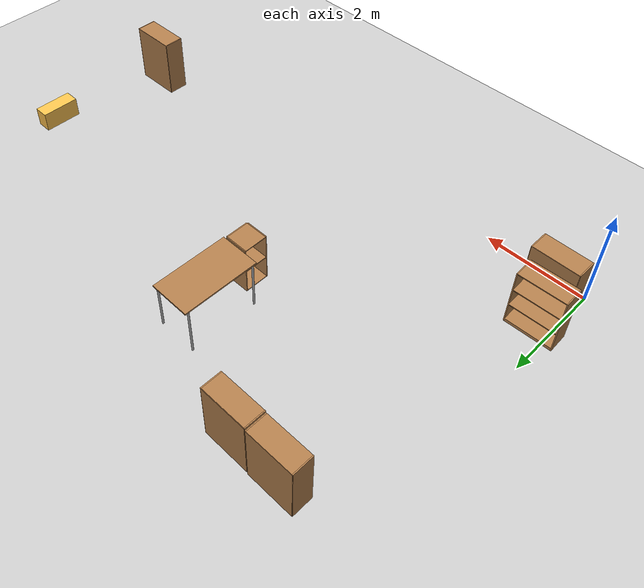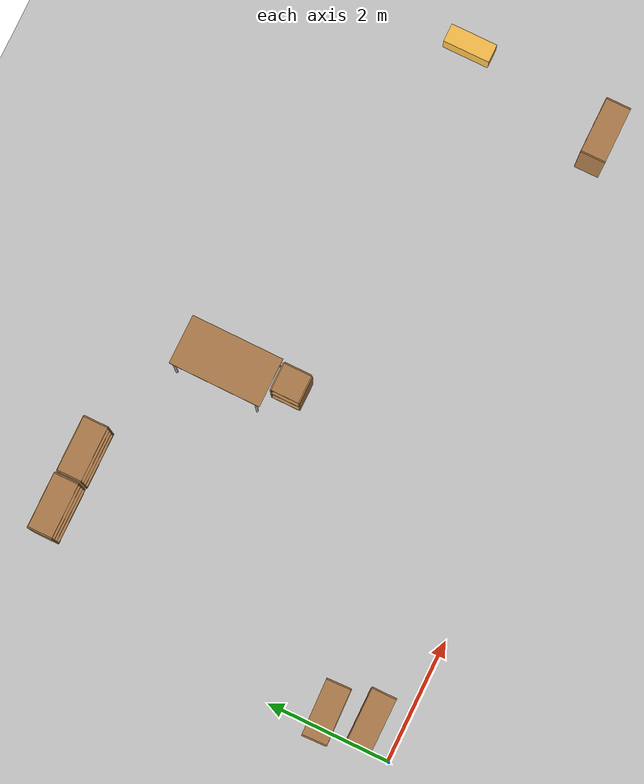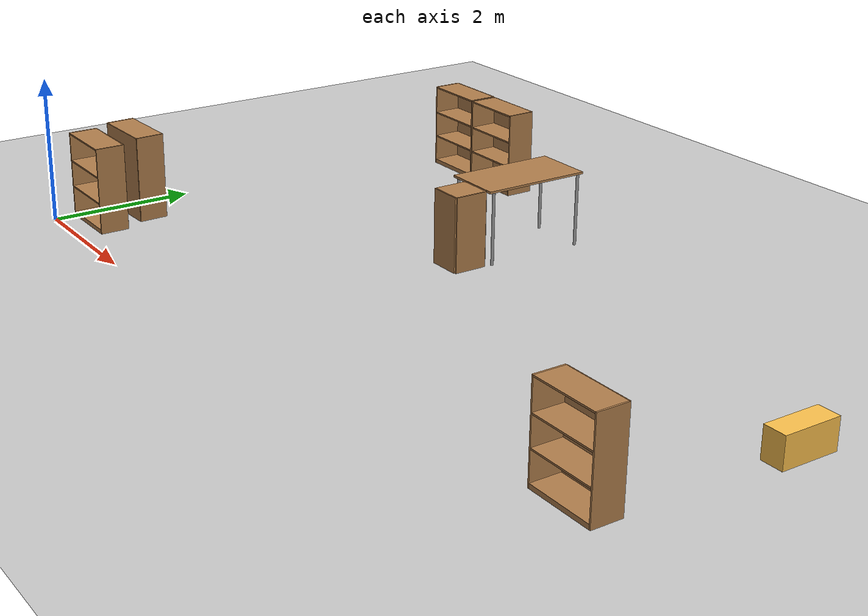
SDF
<sdf version="1.6">
 <world name="default">
  <model name="ground_plane">
   <static>1</static>
   <link name="link">
    <collision name="collision">
     <geometry><plane><normal>0 0 1</normal><size>100 100</size></plane></geometry>
     <surface><friction><ode><mu>100</mu><mu2>50</mu2></ode></friction></surface>
    </collision>
    <visual name="visual">
     <cast_shadows>0</cast_shadows>
     <geometry><plane><normal>0 0 1</normal><size>100 100</size></plane></geometry>
     <material>
      <script><uri>file://media/materials/scripts/gazebo.material</uri><name>Gazebo/Grey</name></script>
     </material>
    </visual>
   </link>
  </model>
  <model name="bookshelf">
   <static>1</static>
   <link name="link">
    <inertial><mass>1</mass></inertial>
    <collision name="back">
     <pose>0 0.005 0.6 0 -0 0</pose>
     <geometry><box><size>0.9 0.01 1.2</size></box></geometry>
    </collision>
    <visual name="visual1">
     <pose>0 0.005 0.6 0 -0 0</pose>
     <geometry><box><size>0.9 0.01 1.2</size></box></geometry>
     <material>
      <script><uri>file://media/materials/scripts/gazebo.material</uri><name>Gazebo/Wood</name></script>
     </material>
    </visual>
    <collision name="left_side">
     <pose>0.45 -0.195 0.6 0 -0 0</pose>
     <geometry><box><size>0.02 0.4 1.2</size></box></geometry>
    </collision>
    <visual name="visual2">
     <pose>0.45 -0.195 0.6 0 -0 0</pose>
     <geometry><box><size>0.02 0.4 1.2</size></box></geometry>
     <material>
      <script><uri>file://media/materials/scripts/gazebo.material</uri><name>Gazebo/Wood</name></script>
     </material>
    </visual>
    <collision name="right_side">
     <pose>-0.45 -0.195 0.6 0 -0 0</pose>
     <geometry><box><size>0.02 0.4 1.2</size></box></geometry>
    </collision>
    <visual name="visual3">
     <pose>-0.45 -0.195 0.6 0 -0 0</pose>
     <geometry><box><size>0.02 0.4 1.2</size></box></geometry>
     <material>
      <script><uri>file://media/materials/scripts/gazebo.material</uri><name>Gazebo/Wood</name></script>
     </material>
    </visual>
    <collision name="bottom">
     <pose>0 -0.195 0.03 0 -0 0</pose>
     <geometry><box><size>0.88 0.4 0.06</size></box></geometry>
    </collision>
    <visual name="visual4">
     <pose>0 -0.195 0.03 0 -0 0</pose>
     <geometry><box><size>0.88 0.4 0.06</size></box></geometry>
     <material>
      <script><uri>file://media/materials/scripts/gazebo.material</uri><name>Gazebo/Wood</name></script>
     </material>
    </visual>
    <collision name="top">
     <pose>0 -0.195 1.19 0 -0 0</pose>
     <geometry><box><size>0.88 0.4 0.02</size></box></geometry>
    </collision>
    <visual name="visual5">
     <pose>0 -0.195 1.19 0 -0 0</pose>
     <geometry><box><size>0.88 0.4 0.02</size></box></geometry>
     <material>
      <script><uri>file://media/materials/scripts/gazebo.material</uri><name>Gazebo/Wood</name></script>
     </material>
    </visual>
    <collision name="low_shelf">
     <pose>0 -0.195 0.43 0 -0 0</pose>
     <geometry><box><size>0.88 0.4 0.02</size></box></geometry>
    </collision>
    <visual name="visual6">
     <pose>0 -0.195 0.43 0 -0 0</pose>
     <geometry><box><size>0.88 0.4 0.02</size></box></geometry>
     <material>
      <script><uri>file://media/materials/scripts/gazebo.material</uri><name>Gazebo/Wood</name></script>
     </material>
    </visual>
    <collision name="high_shelf">
     <pose>0 -0.195 0.8 0 -0 0</pose>
     <geometry><box><size>0.88 0.4 0.02</size></box></geometry>
    </collision>
    <visual name="visual7">
     <pose>0 -0.195 0.8 0 -0 0</pose>
     <geometry><box><size>0.88 0.4 0.02</size></box></geometry>
     <material>
      <script><uri>file://media/materials/scripts/gazebo.material</uri><name>Gazebo/Wood</name></script>
     </material>
    </visual>
   </link>
   <pose>1.2383 6.28205 0 0 -0 0</pose>
  </model>
  <model name="bookshelf_0">
   <static>1</static>
   <link name="link">
    <inertial><mass>1</mass></inertial>
    <collision name="back">
     <pose>0 0.005 0.6 0 -0 0</pose>
     <geometry><box><size>0.9 0.01 1.2</size></box></geometry>
    </collision>
    <visual name="visual1">
     <pose>0 0.005 0.6 0 -0 0</pose>
     <geometry><box><size>0.9 0.01 1.2</size></box></geometry>
     <material>
      <script><uri>file://media/materials/scripts/gazebo.material</uri><name>Gazebo/Wood</name></script>
     </material>
    </visual>
    <collision name="left_side">
     <pose>0.45 -0.195 0.6 0 -0 0</pose>
     <geometry><box><size>0.02 0.4 1.2</size></box></geometry>
    </collision>
    <visual name="visual2">
     <pose>0.45 -0.195 0.6 0 -0 0</pose>
     <geometry><box><size>0.02 0.4 1.2</size></box></geometry>
     <material>
      <script><uri>file://media/materials/scripts/gazebo.material</uri><name>Gazebo/Wood</name></script>
     </material>
    </visual>
    <collision name="right_side">
     <pose>-0.45 -0.195 0.6 0 -0 0</pose>
     <geometry><box><size>0.02 0.4 1.2</size></box></geometry>
    </collision>
    <visual name="visual3">
     <pose>-0.45 -0.195 0.6 0 -0 0</pose>
     <geometry><box><size>0.02 0.4 1.2</size></box></geometry>
     <material>
      <script><uri>file://media/materials/scripts/gazebo.material</uri><name>Gazebo/Wood</name></script>
     </material>
    </visual>
    <collision name="bottom">
     <pose>0 -0.195 0.03 0 -0 0</pose>
     <geometry><box><size>0.88 0.4 0.06</size></box></geometry>
    </collision>
    <visual name="visual4">
     <pose>0 -0.195 0.03 0 -0 0</pose>
     <geometry><box><size>0.88 0.4 0.06</size></box></geometry>
     <material>
      <script><uri>file://media/materials/scripts/gazebo.material</uri><name>Gazebo/Wood</name></script>
     </material>
    </visual>
    <collision name="top">
     <pose>0 -0.195 1.19 0 -0 0</pose>
     <geometry><box><size>0.88 0.4 0.02</size></box></geometry>
    </collision>
    <visual name="visual5">
     <pose>0 -0.195 1.19 0 -0 0</pose>
     <geometry><box><size>0.88 0.4 0.02</size></box></geometry>
     <material>
      <script><uri>file://media/materials/scripts/gazebo.material</uri><name>Gazebo/Wood</name></script>
     </material>
    </visual>
    <collision name="low_shelf">
     <pose>0 -0.195 0.43 0 -0 0</pose>
     <geometry><box><size>0.88 0.4 0.02</size></box></geometry>
    </collision>
    <visual name="visual6">
     <pose>0 -0.195 0.43 0 -0 0</pose>
     <geometry><box><size>0.88 0.4 0.02</size></box></geometry>
     <material>
      <script><uri>file://media/materials/scripts/gazebo.material</uri><name>Gazebo/Wood</name></script>
     </material>
    </visual>
    <collision name="high_shelf">
     <pose>0 -0.195 0.8 0 -0 0</pose>
     <geometry><box><size>0.88 0.4 0.02</size></box></geometry>
    </collision>
    <visual name="visual7">
     <pose>0 -0.195 0.8 0 -0 0</pose>
     <geometry><box><size>0.88 0.4 0.02</size></box></geometry>
     <material>
      <script><uri>file://media/materials/scripts/gazebo.material</uri><name>Gazebo/Wood</name></script>
     </material>
    </visual>
   </link>
   <pose>2.17717 6.2674 0 0 -0 0</pose>
  </model>
  <model name="table_clone">
   <static>1</static>
   <link name="link">
    <collision name="surface">
     <pose>0 0 1 0 -0 0</pose>
     <geometry><box><size>1.5 0.8 0.03</size></box></geometry>
     <surface><friction><ode><mu>0.6</mu><mu2>0.6</mu2></ode></friction></surface>
    </collision>
    <visual name="visual1">
     <pose>0 0 1 0 -0 0</pose>
     <geometry><box><size>1.5 0.8 0.03</size></box></geometry>
     <material>
      <script><uri>file://media/materials/scripts/gazebo.material</uri><name>Gazebo/Wood</name></script>
     </material>
    </visual>
    <collision name="front_left_leg">
     <pose>0.68 0.38 0.5 0 -0 0</pose>
     <geometry><cylinder><radius>0.02</radius><length>1</length></cylinder></geometry>
    </collision>
    <visual name="front_left_leg">
     <pose>0.68 0.38 0.5 0 -0 0</pose>
     <geometry><cylinder><radius>0.02</radius><length>1</length></cylinder></geometry>
     <material>
      <script><uri>file://media/materials/scripts/gazebo.material</uri><name>Gazebo/Grey</name></script>
     </material>
    </visual>
    <collision name="front_right_leg">
     <pose>0.68 -0.38 0.5 0 -0 0</pose>
     <geometry><cylinder><radius>0.02</radius><length>1</length></cylinder></geometry>
    </collision>
    <visual name="front_right_leg">
     <pose>0.68 -0.38 0.5 0 -0 0</pose>
     <geometry><cylinder><radius>0.02</radius><length>1</length></cylinder></geometry>
     <material>
      <script><uri>file://media/materials/scripts/gazebo.material</uri><name>Gazebo/Grey</name></script>
     </material>
    </visual>
    <collision name="back_right_leg">
     <pose>-0.68 -0.38 0.5 0 -0 0</pose>
     <geometry><cylinder><radius>0.02</radius><length>1</length></cylinder></geometry>
    </collision>
    <visual name="back_right_leg">
     <pose>-0.68 -0.38 0.5 0 -0 0</pose>
     <geometry><cylinder><radius>0.02</radius><length>1</length></cylinder></geometry>
     <material>
      <script><uri>file://media/materials/scripts/gazebo.material</uri><name>Gazebo/Grey</name></script>
     </material>
    </visual>
    <collision name="back_left_leg">
     <pose>-0.68 0.38 0.5 0 -0 0</pose>
     <geometry><cylinder><radius>0.02</radius><length>1</length></cylinder></geometry>
    </collision>
    <visual name="back_left_leg">
     <pose>-0.68 0.38 0.5 0 -0 0</pose>
     <geometry><cylinder><radius>0.02</radius><length>1</length></cylinder></geometry>
     <material>
      <script><uri>file://media/materials/scripts/gazebo.material</uri><name>Gazebo/Grey</name></script>
     </material>
    </visual>
   </link>
   <pose>4.28955 4.75152 0 0 0 -1.57662</pose>
  </model>
  <model name="bookshelf_clone_0">
   <static>1</static>
   <link name="link">
    <inertial><mass>1</mass></inertial>
    <collision name="back">
     <pose>0 0.005 0.6 0 -0 0</pose>
     <geometry><box><size>0.9 0.01 1.2</size></box></geometry>
    </collision>
    <visual name="visual1">
     <pose>0 0.005 0.6 0 -0 0</pose>
     <geometry><box><size>0.9 0.01 1.2</size></box></geometry>
     <material>
      <script><uri>file://media/materials/scripts/gazebo.material</uri><name>Gazebo/Wood</name></script>
     </material>
    </visual>
    <collision name="left_side">
     <pose>0.45 -0.195 0.6 0 -0 0</pose>
     <geometry><box><size>0.02 0.4 1.2</size></box></geometry>
    </collision>
    <visual name="visual2">
     <pose>0.45 -0.195 0.6 0 -0 0</pose>
     <geometry><box><size>0.02 0.4 1.2</size></box></geometry>
     <material>
      <script><uri>file://media/materials/scripts/gazebo.material</uri><name>Gazebo/Wood</name></script>
     </material>
    </visual>
    <collision name="right_side">
     <pose>-0.45 -0.195 0.6 0 -0 0</pose>
     <geometry><box><size>0.02 0.4 1.2</size></box></geometry>
    </collision>
    <visual name="visual3">
     <pose>-0.45 -0.195 0.6 0 -0 0</pose>
     <geometry><box><size>0.02 0.4 1.2</size></box></geometry>
     <material>
      <script><uri>file://media/materials/scripts/gazebo.material</uri><name>Gazebo/Wood</name></script>
     </material>
    </visual>
    <collision name="bottom">
     <pose>0 -0.195 0.03 0 -0 0</pose>
     <geometry><box><size>0.88 0.4 0.06</size></box></geometry>
    </collision>
    <visual name="visual4">
     <pose>0 -0.195 0.03 0 -0 0</pose>
     <geometry><box><size>0.88 0.4 0.06</size></box></geometry>
     <material>
      <script><uri>file://media/materials/scripts/gazebo.material</uri><name>Gazebo/Wood</name></script>
     </material>
    </visual>
    <collision name="top">
     <pose>0 -0.195 1.19 0 -0 0</pose>
     <geometry><box><size>0.88 0.4 0.02</size></box></geometry>
    </collision>
    <visual name="visual5">
     <pose>0 -0.195 1.19 0 -0 0</pose>
     <geometry><box><size>0.88 0.4 0.02</size></box></geometry>
     <material>
      <script><uri>file://media/materials/scripts/gazebo.material</uri><name>Gazebo/Wood</name></script>
     </material>
    </visual>
    <collision name="low_shelf">
     <pose>0 -0.195 0.43 0 -0 0</pose>
     <geometry><box><size>0.88 0.4 0.02</size></box></geometry>
    </collision>
    <visual name="visual6">
     <pose>0 -0.195 0.43 0 -0 0</pose>
     <geometry><box><size>0.88 0.4 0.02</size></box></geometry>
     <material>
      <script><uri>file://media/materials/scripts/gazebo.material</uri><name>Gazebo/Wood</name></script>
     </material>
    </visual>
    <collision name="high_shelf">
     <pose>0 -0.195 0.8 0 -0 0</pose>
     <geometry><box><size>0.88 0.4 0.02</size></box></geometry>
    </collision>
    <visual name="visual7">
     <pose>0 -0.195 0.8 0 -0 0</pose>
     <geometry><box><size>0.88 0.4 0.02</size></box></geometry>
     <material>
      <script><uri>file://media/materials/scripts/gazebo.material</uri><name>Gazebo/Wood</name></script>
     </material>
    </visual>
   </link>
   <pose>0.430752 0.696829 0 0 -0 0</pose>
  </model>
  <model name="bookshelf_1">
   <static>1</static>
   <link name="link">
    <inertial><mass>1</mass></inertial>
    <collision name="back">
     <pose>0 0.005 0.6 0 -0 0</pose>
     <geometry><box><size>0.9 0.01 1.2</size></box></geometry>
    </collision>
    <visual name="visual1">
     <pose>0 0.005 0.6 0 -0 0</pose>
     <geometry><box><size>0.9 0.01 1.2</size></box></geometry>
     <material>
      <script><uri>file://media/materials/scripts/gazebo.material</uri><name>Gazebo/Wood</name></script>
     </material>
    </visual>
    <collision name="left_side">
     <pose>0.45 -0.195 0.6 0 -0 0</pose>
     <geometry><box><size>0.02 0.4 1.2</size></box></geometry>
    </collision>
    <visual name="visual2">
     <pose>0.45 -0.195 0.6 0 -0 0</pose>
     <geometry><box><size>0.02 0.4 1.2</size></box></geometry>
     <material>
      <script><uri>file://media/materials/scripts/gazebo.material</uri><name>Gazebo/Wood</name></script>
     </material>
    </visual>
    <collision name="right_side">
     <pose>-0.45 -0.195 0.6 0 -0 0</pose>
     <geometry><box><size>0.02 0.4 1.2</size></box></geometry>
    </collision>
    <visual name="visual3">
     <pose>-0.45 -0.195 0.6 0 -0 0</pose>
     <geometry><box><size>0.02 0.4 1.2</size></box></geometry>
     <material>
      <script><uri>file://media/materials/scripts/gazebo.material</uri><name>Gazebo/Wood</name></script>
     </material>
    </visual>
    <collision name="bottom">
     <pose>0 -0.195 0.03 0 -0 0</pose>
     <geometry><box><size>0.88 0.4 0.06</size></box></geometry>
    </collision>
    <visual name="visual4">
     <pose>0 -0.195 0.03 0 -0 0</pose>
     <geometry><box><size>0.88 0.4 0.06</size></box></geometry>
     <material>
      <script><uri>file://media/materials/scripts/gazebo.material</uri><name>Gazebo/Wood</name></script>
     </material>
    </visual>
    <collision name="top">
     <pose>0 -0.195 1.19 0 -0 0</pose>
     <geometry><box><size>0.88 0.4 0.02</size></box></geometry>
    </collision>
    <visual name="visual5">
     <pose>0 -0.195 1.19 0 -0 0</pose>
     <geometry><box><size>0.88 0.4 0.02</size></box></geometry>
     <material>
      <script><uri>file://media/materials/scripts/gazebo.material</uri><name>Gazebo/Wood</name></script>
     </material>
    </visual>
    <collision name="low_shelf">
     <pose>0 -0.195 0.43 0 -0 0</pose>
     <geometry><box><size>0.88 0.4 0.02</size></box></geometry>
    </collision>
    <visual name="visual6">
     <pose>0 -0.195 0.43 0 -0 0</pose>
     <geometry><box><size>0.88 0.4 0.02</size></box></geometry>
     <material>
      <script><uri>file://media/materials/scripts/gazebo.material</uri><name>Gazebo/Wood</name></script>
     </material>
    </visual>
    <collision name="high_shelf">
     <pose>0 -0.195 0.8 0 -0 0</pose>
     <geometry><box><size>0.88 0.4 0.02</size></box></geometry>
    </collision>
    <visual name="visual7">
     <pose>0 -0.195 0.8 0 -0 0</pose>
     <geometry><box><size>0.88 0.4 0.02</size></box></geometry>
     <material>
      <script><uri>file://media/materials/scripts/gazebo.material</uri><name>Gazebo/Wood</name></script>
     </material>
    </visual>
   </link>
   <pose>0.271418 0.950457 0 0 0 -3.11062</pose>
  </model>
  <model name="cabinet">
   <static>1</static>
   <link name="cabinet_bottom_plate">
    <inertial>
     <pose>0 0 -1 0 -0 0</pose>
     <inertia><ixx>2.05</ixx><ixy>0</ixy><ixz>0</ixz><iyy>2.05</iyy><iyz>0</iyz><izz>2.05</izz></inertia>
     <mass>25</mass>
    </inertial>
    <collision name="cabinet_bottom_plate_geom">
     <pose>0 0 0.01 0 -0 0</pose>
     <geometry><box><size>0.45 0.45 0.02</size></box></geometry>
    </collision>
    <visual name="cabinet_bottom_plate_geom_visual">
     <pose>0 0 0.01 0 -0 0</pose>
     <geometry><box><size>0.45 0.45 0.02</size></box></geometry>
     <material>
      <script><uri>file://media/materials/scripts/gazebo.material</uri><name>Gazebo/Wood</name></script>
     </material>
    </visual>
    <collision name="cabinet_bottom_plate_geom_cabinet_back_plate">
     <pose>0.235 0 0.51 0 -0 0</pose>
     <geometry><box><size>0.02 0.45 1.02</size></box></geometry>
    </collision>
    <visual name="cabinet_bottom_plate_geom_cabinet_back_plate_visual">
     <pose>0.235 0 0.51 0 -0 0</pose>
     <geometry><box><size>0.02 0.45 1.02</size></box></geometry>
     <material>
      <script><uri>file://media/materials/scripts/gazebo.material</uri><name>Gazebo/Wood</name></script>
     </material>
    </visual>
    <collision name="cabinet_bottom_plate_geom_cabinet_left_plate">
     <pose>0 0.235 0.51 0 -0 0</pose>
     <geometry><box><size>0.45 0.02 1.02</size></box></geometry>
    </collision>
    <visual name="cabinet_bottom_plate_geom_cabinet_left_plate_visual">
     <pose>0 0.235 0.51 0 -0 0</pose>
     <geometry><box><size>0.45 0.02 1.02</size></box></geometry>
     <material>
      <script><uri>file://media/materials/scripts/gazebo.material</uri><name>Gazebo/Wood</name></script>
     </material>
    </visual>
    <collision name="cabinet_bottom_plate_geom_cabinet_middle_plate">
     <pose>0 0 0.51 0 -0 0</pose>
     <geometry><box><size>0.45 0.45 0.02</size></box></geometry>
    </collision>
    <visual name="cabinet_bottom_plate_geom_cabinet_middle_plate_visual">
     <pose>0 0 0.51 0 -0 0</pose>
     <geometry><box><size>0.45 0.45 0.02</size></box></geometry>
     <material>
      <script><uri>file://media/materials/scripts/gazebo.material</uri><name>Gazebo/Wood</name></script>
     </material>
    </visual>
    <collision name="cabinet_bottom_plate_geom_cabinet_right_plate">
     <pose>0 -0.235 0.51 0 -0 0</pose>
     <geometry><box><size>0.45 0.02 1.02</size></box></geometry>
    </collision>
    <visual name="cabinet_bottom_plate_geom_cabinet_right_plate_visual">
     <pose>0 -0.235 0.51 0 -0 0</pose>
     <geometry><box><size>0.45 0.02 1.02</size></box></geometry>
     <material>
      <script><uri>file://media/materials/scripts/gazebo.material</uri><name>Gazebo/Wood</name></script>
     </material>
    </visual>
    <collision name="cabinet_bottom_plate_geom_cabinet_top_plate">
     <pose>0 0 1.01 0 -0 0</pose>
     <geometry><box><size>0.45 0.45 0.02</size></box></geometry>
    </collision>
    <visual name="cabinet_bottom_plate_geom_cabinet_top_plate_visual">
     <pose>0 0 1.01 0 -0 0</pose>
     <geometry><box><size>0.45 0.45 0.02</size></box></geometry>
     <material>
      <script><uri>file://media/materials/scripts/gazebo.material</uri><name>Gazebo/Wood</name></script>
     </material>
    </visual>
   </link>
   <pose>4.41137 3.73329 0 0 -0 0</pose>
  </model>
  <model name="Box_15x30">
   <link name="Wall">
    <pose>0 0 0.1985 0 -0 0</pose>
    <inertial>
     <mass>5</mass>
     <inertia><ixx>0.3089</ixx><iyy>0.1022</iyy><izz>0.2797</izz><ixy>0</ixy><ixz>0</ixz><iyz>0</iyz></inertia>
    </inertial>
    <collision name="Wall_Collision"><geometry><box><size>0.296 0.764 0.397</size></box></geometry></collision>
    <visual name="Wall_Visual">
     <geometry><box><size>0.296 0.764 0.397</size></box></geometry>
     <material>
      <script><uri>file://media/materials/scripts/gazebo.material</uri><name>Gazebo/Grey</name></script>
      <ambient>1 0.764706 0.305882 1</ambient>
     </material>
    </visual>
   </link>
   <static>1</static>
   <pose>10.3607 3.59289 0 0 -0 0</pose>
  </model>
  <model name="bookshelf_2">
   <static>1</static>
   <link name="link">
    <inertial><mass>1</mass></inertial>
    <collision name="back">
     <pose>0 0.005 0.6 0 -0 0</pose>
     <geometry><box><size>0.9 0.01 1.2</size></box></geometry>
    </collision>
    <visual name="visual1">
     <pose>0 0.005 0.6 0 -0 0</pose>
     <geometry><box><size>0.9 0.01 1.2</size></box></geometry>
     <material>
      <script><uri>file://media/materials/scripts/gazebo.material</uri><name>Gazebo/Wood</name></script>
     </material>
    </visual>
    <collision name="left_side">
     <pose>0.45 -0.195 0.6 0 -0 0</pose>
     <geometry><box><size>0.02 0.4 1.2</size></box></geometry>
    </collision>
    <visual name="visual2">
     <pose>0.45 -0.195 0.6 0 -0 0</pose>
     <geometry><box><size>0.02 0.4 1.2</size></box></geometry>
     <material>
      <script><uri>file://media/materials/scripts/gazebo.material</uri><name>Gazebo/Wood</name></script>
     </material>
    </visual>
    <collision name="right_side">
     <pose>-0.45 -0.195 0.6 0 -0 0</pose>
     <geometry><box><size>0.02 0.4 1.2</size></box></geometry>
    </collision>
    <visual name="visual3">
     <pose>-0.45 -0.195 0.6 0 -0 0</pose>
     <geometry><box><size>0.02 0.4 1.2</size></box></geometry>
     <material>
      <script><uri>file://media/materials/scripts/gazebo.material</uri><name>Gazebo/Wood</name></script>
     </material>
    </visual>
    <collision name="bottom">
     <pose>0 -0.195 0.03 0 -0 0</pose>
     <geometry><box><size>0.88 0.4 0.06</size></box></geometry>
    </collision>
    <visual name="visual4">
     <pose>0 -0.195 0.03 0 -0 0</pose>
     <geometry><box><size>0.88 0.4 0.06</size></box></geometry>
     <material>
      <script><uri>file://media/materials/scripts/gazebo.material</uri><name>Gazebo/Wood</name></script>
     </material>
    </visual>
    <collision name="top">
     <pose>0 -0.195 1.19 0 -0 0</pose>
     <geometry><box><size>0.88 0.4 0.02</size></box></geometry>
    </collision>
    <visual name="visual5">
     <pose>0 -0.195 1.19 0 -0 0</pose>
     <geometry><box><size>0.88 0.4 0.02</size></box></geometry>
     <material>
      <script><uri>file://media/materials/scripts/gazebo.material</uri><name>Gazebo/Wood</name></script>
     </material>
    </visual>
    <collision name="low_shelf">
     <pose>0 -0.195 0.43 0 -0 0</pose>
     <geometry><box><size>0.88 0.4 0.02</size></box></geometry>
    </collision>
    <visual name="visual6">
     <pose>0 -0.195 0.43 0 -0 0</pose>
     <geometry><box><size>0.88 0.4 0.02</size></box></geometry>
     <material>
      <script><uri>file://media/materials/scripts/gazebo.material</uri><name>Gazebo/Wood</name></script>
     </material>
    </visual>
    <collision name="high_shelf">
     <pose>0 -0.195 0.8 0 -0 0</pose>
     <geometry><box><size>0.88 0.4 0.02</size></box></geometry>
    </collision>
    <visual name="visual7">
     <pose>0 -0.195 0.8 0 -0 0</pose>
     <geometry><box><size>0.88 0.4 0.02</size></box></geometry>
     <material>
      <script><uri>file://media/materials/scripts/gazebo.material</uri><name>Gazebo/Wood</name></script>
     </material>
    </visual>
   </link>
   <pose>9.86088 1.34788 0 0 -0 0</pose>
  </model>
 </world>
</sdf>
